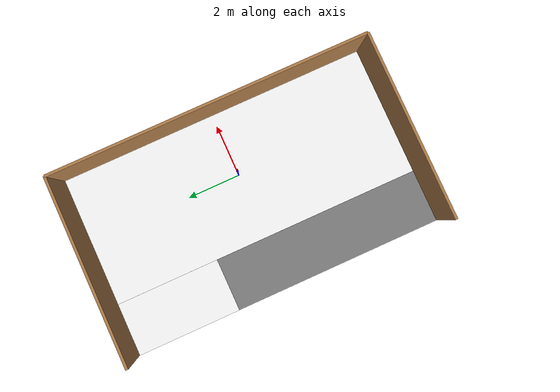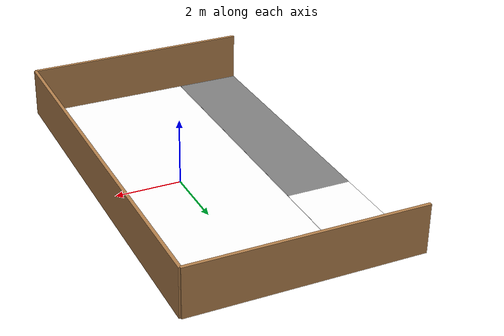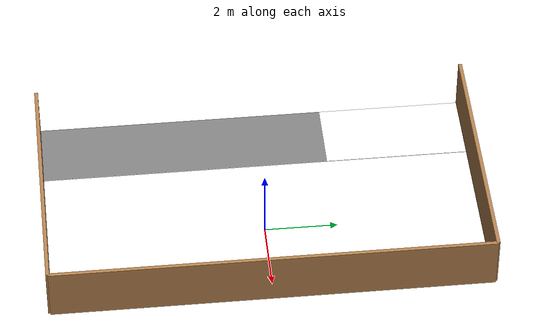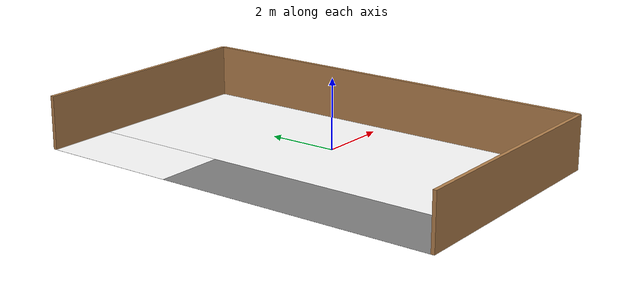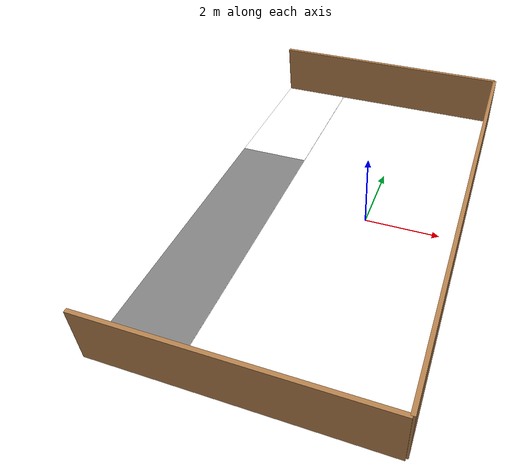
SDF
<?xml version="1.0" ?>
<sdf version="1.8">
    <world name="world_demo">
    <physics name="1ms" type="ignored">
        <max_step_size>0.001</max_step_size>
        <real_time_factor>1.0</real_time_factor>
    </physics>

    <plugin
      filename="gz-sim-physics-system"
      name="gz::sim::systems::Physics">
    </plugin>
    <plugin
      filename="gz-sim-user-commands-system"
      name="gz::sim::systems::UserCommands">
    </plugin>
    <plugin
      filename="gz-sim-scene-broadcaster-system"
      name="gz::sim::systems::SceneBroadcaster">
    </plugin>
    <plugin
      filename="gz-sim-contact-system"
      name="gz::sim::systems::Contact">
    </plugin>

    <gui fullscreen="0">
        <!-- 3D scene -->
        <plugin filename="MinimalScene" name="3D View">

        <gz-gui>
            <title>3D View</title>
            <property type="bool" key="showTitleBar">false</property>
            <property type="string" key="state">docked</property>
        </gz-gui>

        <engine>ogre2</engine>
        <scene>scene</scene>
        <ambient_light>0.4 0.4 0.4</ambient_light>
        <background_color>0.8 0.8 0.8</background_color>
        <camera_pose>-4 0 6 0 0.95 0</camera_pose>
        <view_controller>orbit</view_controller>
        <camera_clip>
            <near>0.25</near>
            <far>25000</far>
        </camera_clip>
        </plugin>

        <plugin filename="GzSceneManager" name="Scene Manager">
        <gz-gui>
            <property key="resizable" type="bool">false</property>
            <property key="width" type="double">5</property>
            <property key="height" type="double">5</property>
            <property key="state" type="string">floating</property>
            <property key="showTitleBar" type="bool">false</property>
        </gz-gui>
        </plugin>

        <!-- World control -->
        <plugin filename="WorldControl" name="World control">
            <gz-gui>
                <title>World control</title>
                <property type="bool" key="showTitleBar">false</property>
                <property type="bool" key="resizable">talse</property>
                <property type="double" key="height">72</property>
                <property type="double" key="width">121</property>
                <property type="double" key="z">1</property>

                <property type="string" key="state">floating</property>
                <anchors target="3D View">
                <line own="left" target="left"/>
                <line own="bottom" target="bottom"/>
                </anchors>
            </gz-gui>

            <play_pause>true</play_pause>
            <step>true</step>
            <start_paused>true</start_paused>
            <service>/world/world_demo/control</service>
            <stats_topic>/world/world_demo/stats</stats_topic>
        </plugin>

        <!-- World statistics -->
        <plugin filename="WorldStats" name="World stats">
            <gz-gui>
                <title>World stats</title>
                <property type="bool" key="showTitleBar">false</property>
                <property type="bool" key="resizable">false</property>
                <property type="double" key="height">110</property>
                <property type="double" key="width">290</property>
                <property type="double" key="z">1</property>

                <property type="string" key="state">floating</property>
                <anchors target="3D View">
                <line own="right" target="right"/>
                <line own="bottom" target="bottom"/>
                </anchors>
            </gz-gui>

            <sim_time>true</sim_time>
            <real_time>true</real_time>
            <real_time_factor>true</real_time_factor>
            <iterations>true</iterations>
            <topic>/world/world_demo/stats</topic>

        </plugin>
    </gui>

        <model name='garden'>
            <static>true</static>
            <link name='link'>

            <!-- Grass Plane -->

                <collision name='collision_grass_1'>
                    <pose>0 0 0 0 0 0</pose>
                    <geometry>
                    <plane>
                        <normal>0 0 1</normal>
                        <size>5 12</size>
                    </plane>
                    </geometry>
                </collision>

                <visual name='visual_grass_1'>
                    <pose>0 0 0 0 0 0</pose>
                    <cast_shadows>false</cast_shadows>
                    <geometry>
                    <plane>
                        <normal>0 0 1</normal>
                        <size>5 12</size>
                    </plane>
                    </geometry>
                    <material>
                    <diffuse>1.0 1.0 1.0</diffuse>
                    <specular>1.0 1.0 1.0</specular>
                    <pbr>
                        <metal>
                        <albedo_map>materials/textures/grass_dry.png</albedo_map>
                        <normal_map>materials/textures/grass_dry.png</normal_map>
                        </metal>
                    </pbr>
                    </material>
                </visual>

                <collision name='collision_grass_2'>
                    <pose>-3.5 4 0 0 0 0</pose>
                    <geometry>
                    <plane>
                        <normal>0 0 1</normal>
                        <size>2 4</size>
                    </plane>
                    </geometry>
                </collision>

                <visual name='visual_grass_2'>
                    <pose>-3.5 4 0 0 0 0</pose>
                    <cast_shadows>false</cast_shadows>
                    <geometry>
                    <plane>
                        <normal>0 0 1</normal>
                        <size>2 4</size>
                    </plane>
                    </geometry>
                    <material>
                    <diffuse>1.0 1.0 1.0</diffuse>
                    <specular>1.0 1.0 1.0</specular>
                    <pbr>
                        <metal>
                        <albedo_map>materials/textures/grass_dry.png</albedo_map>
                        <normal_map>materials/textures/grass_dry.png</normal_map>
                        </metal>
                    </pbr>
                    </material>
                </visual>

            <!-- Stone Plane -->

                <collision name='collision_stones'>
                    <pose>-3.5 -2 0 0 0 0</pose>
                    <geometry>
                        <plane>
                            <normal>0 0 1</normal>
                            <size>2 8</size>
                        </plane>
                    </geometry>
                </collision>

                <visual name='visual_stones'>
                    <pose>-3.5 -2 0 0 0 0</pose>
                    <cast_shadows>false</cast_shadows>
                    <geometry>
                        <plane>
                            <normal>0 0 1</normal>
                            <size>2 8</size>
                        </plane>
                    </geometry>
                    <material>
                        <diffuse>0.5 0.5 0.5</diffuse>
                        <specular>0.5 0.5 0.5</specular>
                    </material>
                </visual>

            <!-- Fences -->

                <collision name="collision_fence_1">
                    <pose>2.5 0 0.75 0 0 0</pose>
                    <geometry>
                    <box>
                        <size>0.1 12. 1.5</size>
                    </box>
                    </geometry>
                </collision>

                <visual name="visual_fence_1">
                    <pose>2.5 0 0.75 0 0 0</pose>
                    <cast_shadows>false</cast_shadows>
                    <geometry>
                    <box>
                        <size>0.1 12. 1.5</size>
                    </box>
                    </geometry>
                    <material>
                    <script>
                        <uri>materials/scripts</uri>
                        <uri>materials/textures</uri>
                        <name>Fence/WoodBoarding</name>
                    </script>
                    </material>
                </visual>

                <collision name="collision_fence_2">
                    <pose>-1 -6 0.75 0 0 1.57</pose>
                    <geometry>
                    <box>
                        <size>0.1 7 1.5</size>
                    </box>
                    </geometry>
                </collision>

                <visual name="visual_fence_2">
                    <pose>-1 -6 0.75 0 0 1.57</pose>
                    <cast_shadows>false</cast_shadows>
                    <geometry>
                    <box>
                        <size>0.1 7 1.5</size>
                    </box>
                    </geometry>
                    <material>
                    <script>
                        <uri>materials/scripts</uri>
                        <uri>materials/textures</uri>
                        <name>Fence/WoodBoarding</name>
                    </script>
                    </material>
                </visual>

                <collision name="collision_fence_3">
                    <pose>-1 6 0.75 0 0 1.57</pose>
                    <geometry>
                    <box>
                        <size>0.1 7 1.5</size>
                    </box>
                    </geometry>
                </collision>

                <visual name="visual_fence_3">
                    <pose>-1 6 0.75 0 0 1.57</pose>
                    <cast_shadows>false</cast_shadows>
                    <geometry>
                    <box>
                        <size>0.1 7 1.5</size>
                    </box>
                    </geometry>
                    <material>
                    <script>
                        <uri>materials/scripts</uri>
                        <uri>materials/textures</uri>
                        <name>Fence/WoodBoarding</name>
                    </script>
                    </material>
                </visual>
            </link>
        </model>
    </world>
</sdf>
